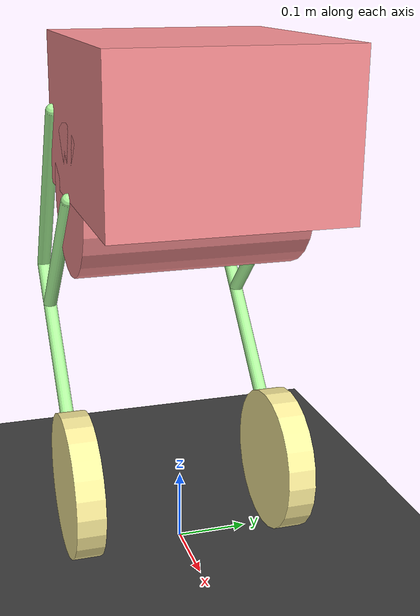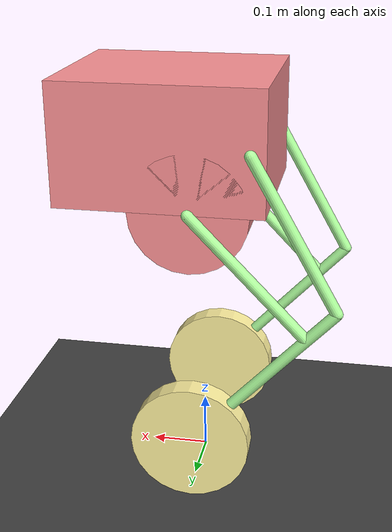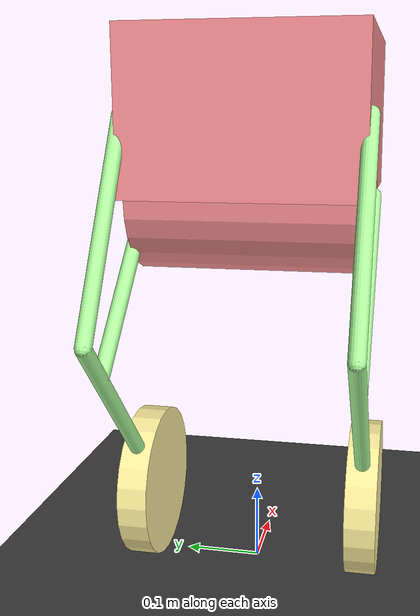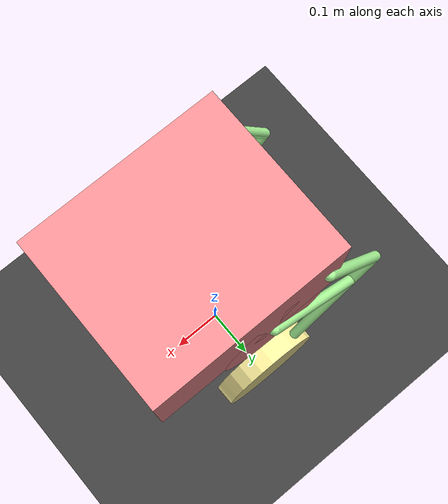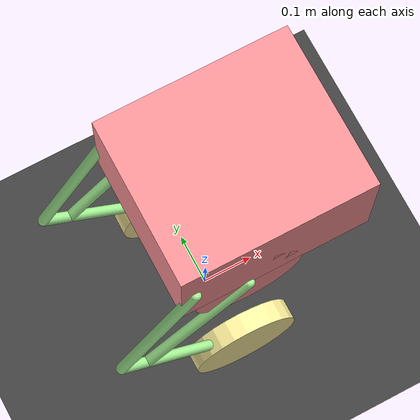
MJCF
<mujoco model="wheel_legged_robot_v0.2">

    <compiler angle="radian" coordinate="local" inertiafromgeom="auto"/>

    <option gravity="0 0 -9.81" timestep="0.00001" collision="predefined" cone="elliptic" o_solref="0.002 0.1">
        <flag override="enable"/>
    </option>

    <visual>
    </visual>

    <asset>
        <texture type="skybox" builtin="gradient" width="100" height="100" rgb1="0.4 0.6 0.8" rgb2="0 0 0"/>
        <texture type="2d" name="plane" builtin="checker" rgb1="0.2 0.2 0.2" rgb2="0.3 0.3 0.3" width="100"
                 height="100"/>
        <material name="plane" reflectance="0.0" texture="plane" texrepeat="1 1" texuniform="true"/>
        <texture type="2d" name="wheel" builtin="checker" rgb1="0.8 0.6 0.2" rgb2="0.2 0.6 0.8" width="100"
                 height="100"/>
        <material name="wheel" reflectance="0.0" texture="wheel" texrepeat="1 1" texuniform="true"/>
    </asset>

    <!-- build the robot model,  SI unit-->
    <worldbody>
        <!-- define the environment and optical environment -->
        <light mode="trackcom" pos="0 0 5" dir="0 0 -1"/>
        <light directional="true" pos="0 0 10" dir="0 0 -1" diffuse="0.2 0.2 0.2" specular="0 0 0"/>
        <geom name="floor" pos="0 0 0" size="50 50 50" type="plane" material="plane" condim="3" conaffinity="15"/>

        <!-- robot part -->
        <!-- torso part -->
        <body name="torso" pos="0 0 0.515">
            <camera name="track" pos="0 -0.3 0.3" zaxis="0 -1 0.5" mode="track"/>
            <geom type="box" rgba="0.992 0.576 0.588 1" name="torso_geom" pos="0.05 0 0.103" size="0.175 0.15 0.103"
                  mass="0.05"/>
            <geom name="battery" type="cylinder" rgba="0.992 0.576 0.588 1" pos="0 0 0" fromto="0 -0.15 0 0 0.15 0"
                  mass="10" size="0.1"/>
            <joint name="root_x" type="slide" axis="1 0 0" pos="0 0 0" limited="false" damping="0" stiffness="0"
                   armature="0"/>
            <joint name="root_z" type="slide" axis="0 0 1" pos="0 0 0" limited="false" damping="0" stiffness="0"
                   armature="0"/>
            <joint name="rotation_y" type="hinge" axis="0 1 0" pos="0 0 0" limited="false" damping="0" stiffness="0"
                   armature="0"/>

            <!--left leg part-->
            <body name="L_link1" pos="0 0.15 0">
                <geom name="L_link1" type="capsule" pos="0 0 0" fromto="0 0 0 -0.196 0 -0.2026" rgba="0.686 1 0.616 1"
                      size="0.01" mass="0.01"/>
                <joint name="L_leg" type="hinge" axis="0 1 0" pos="0 0 0" limited="false" damping="0" armature="0"
                       stiffness="0"/>
                <body name="L_link3" pos="-0.196 0 -0.2026">
                    <geom name="L_link3" type="capsule" pos="0 0 0" fromto="0.193 0 -0.207 -0.047 0 0.05"
                          rgba="0.686 1 0.616 1" size="0.01" mass="0.01"/>
                    <joint name="L_1_3" type="hinge" pos="0 0 0" axis="0 1 0" limited="false" stiffness="0" armature="0"
                           damping="0"/>
                    <body name="L_wheel" pos="0.193 0 -0.207">
                        <geom name="L_wheel" pos="0 0 0" type="cylinder" fromto="0 -0.02 0 0 0.02 0" size="0.103"
                              rgba="1 0.945 0.620 1" mass="0.1" material="wheel"/>
                        <joint name="L_wheel" type="hinge" axis="0 1 0" pos="0 0 0" limited="false" damping="0"
                               armature="0" stiffness="0"/>
                    </body>
                </body>
            </body>
            <body name="L_link2" pos="-0.1 0.15 0.1015">
                <geom name="L_link2" pos="0 0 0" type="capsule" fromto="0 0 0 -0.1436 0 -0.253" size="0.01"
                      rgba="0.686 1 0.616 1" mass="0.01"/>
                <joint name="torso_L_link2" type="hinge" pos="0 0 0" axis="0 1 0" limited="false" stiffness="0"
                       armature="0" damping="0"/>
            </body>

            <!--right leg part-->
            <body name="R_link1" pos="0 -0.15 0">
                <geom name="R_link1" type="capsule" pos="0 0 0" fromto="0 0 0 -0.196 0 -0.2026" rgba="0.686 1 0.616 1"
                      size="0.01" mass="0.01"/>
                <joint name="R_leg" type="hinge" axis="0 1 0" pos="0 0 0" limited="false" damping="0" armature="0"
                       stiffness="0"/>
                <body name="R_link3" pos="-0.196 0 -0.2026">
                    <geom name="R_link3" type="capsule" pos="0 0 0" fromto="0.193 0 -0.207 -0.047 0 0.05"
                          rgba="0.686 1 0.616 1" size="0.01" mass="0.01"/>
                    <joint name="R_1_3" type="hinge" pos="0 0 0" axis="0 1 0" limited="false" stiffness="0" armature="0"
                           damping="0"/>
                    <body name="R_wheel" pos="0.193 0 -0.207">
                        <geom name="R_wheel" pos="0 0 0" type="cylinder" fromto="0 -0.02 0 0 0.02 0" size="0.103"
                              rgba="1 0.945 0.620 1" mass="0.1" material="wheel"/>
                        <joint name="R_wheel" type="hinge" axis="0 1 0" pos="0 0 0" limited="false" damping="0"
                               armature="0" stiffness="0"/>
                    </body>
                </body>
            </body>
            <body name="R_link2" pos="-0.1 -0.15 0.1015">
                <geom name="R_link2" pos="0 0 0" type="capsule" fromto="0 0 0 -0.1436 0 -0.253" size="0.01"
                      rgba="0.686 1 0.616 1" mass="0.01"/>
                <joint name="torso_R_link2" type="hinge" pos="0 0 0" axis="0 1 0" limited="false" stiffness="0"
                       armature="0" damping="0"/>
            </body>

        </body>

    </worldbody>

    <!-- define constraint -->
    <equality>
        <connect name="L_link_constraint" active="true" solref="0.002 1" body1="L_link3" body2="L_link2"
                 anchor="-0.047 0 0.05"/>
        <connect name="R_link_constraint" active="true" solref="0.002 1" body1="R_link3" body2="R_link2"
                 anchor="-0.047 0 0.05"/>
    </equality>

    <!-- define actuator -->
    <actuator>
        <!--motor joint="L_leg" gear="1" name="L_leg"/-->
        <position joint="L_leg" gear="10" kp="100" name="L_leg"/>
        <motor joint="L_wheel" gear="1" name="L_wheel"/>
        <!--motor joint="R_leg" gear="1" name="R_leg"/-->
        <position joint="R_leg" gear="10" kp="100" name="R_leg"/>
        <motor joint="R_wheel" gear="1" name="R_wheel"/>
        <motor joint="root_x" gear="1" name="external"/>
    </actuator>

    <!-- contact define -->
    <contact>
        <pair geom1="floor" geom2="L_wheel" condim="3" friction="0.5 0.5 0.5" solref="0.02 0.1"/>
        <pair geom1="floor" geom2="R_wheel" condim="3" friction="0.5 0.5 0.5" solref="0.02 0.1"/>
    </contact>

</mujoco>
